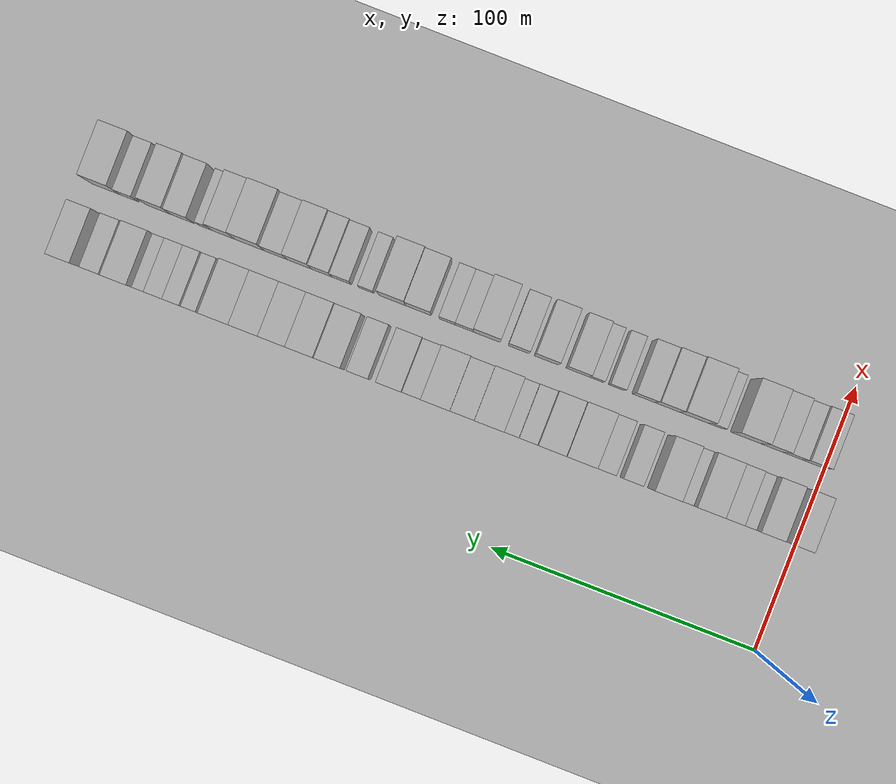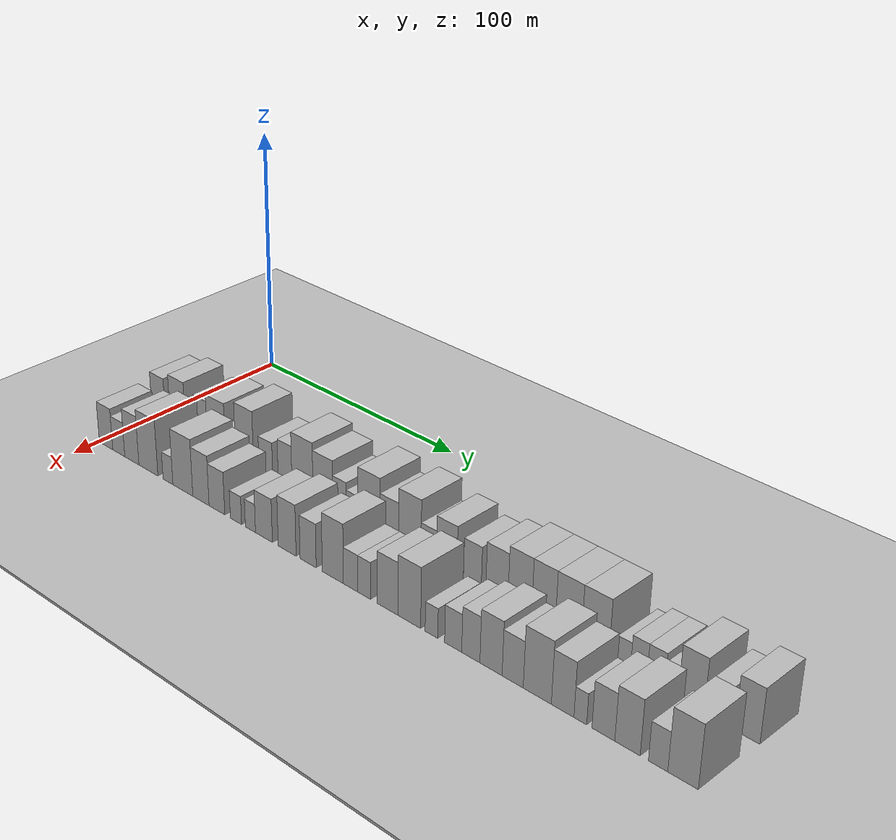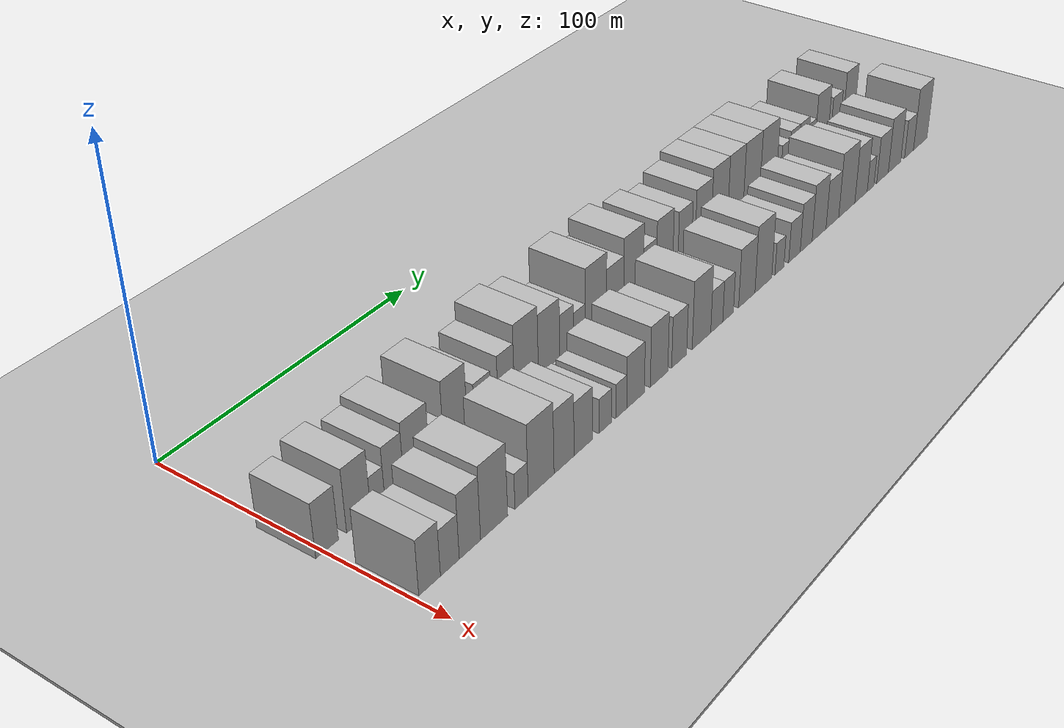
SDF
<sdf version="1.6">
 <world name="default">
  <include><name>ground_plane_1</name><uri>model://HANNAS_ground_plane</uri></include>
  <include>
   <name>ground_plane_2</name>
   <uri>model://HANNAS_ground_plane</uri>
   <pose>100 0 0  0 0 0</pose>
  </include>
  <model name="building_30">
   <static>1</static>
   <pose>50.0000 0.7794 0 0.000000 0.000000 0.000000</pose>
   <link name="link">
    <pose>0 0 9.00 0 0 0</pose>
    <collision name="collision"><geometry><box><size>20.0000 8.2147 18.0000</size></box></geometry></collision>
    <visual name="visual">
     <cast_shadows>0</cast_shadows>
     <geometry><box><size>20.0000 8.2147 18.0000</size></box></geometry>
     <material>
      <script>
       <uri>model://HANNAS_wall/materials/scripts</uri>
       <uri>model://HANNAS_wall/materials/textures</uri>
       <name>vrc/HANNAS_wall</name>
      </script>
     </material>
    </visual>
   </link>
  </model>
  <model name="building_31">
   <static>1</static>
   <pose>50.0000 12.4411 0 0.000000 0.000000 0.000000</pose>
   <link name="link">
    <pose>0 0 10.50 0 0 0</pose>
    <collision name="collision"><geometry><box><size>20.0000 9.1086 21.0000</size></box></geometry></collision>
    <visual name="visual">
     <cast_shadows>0</cast_shadows>
     <geometry><box><size>20.0000 9.1086 21.0000</size></box></geometry>
     <material>
      <script>
       <uri>model://HANNAS_wall/materials/scripts</uri>
       <uri>model://HANNAS_wall/materials/textures</uri>
       <name>vrc/HANNAS_wall</name>
      </script>
     </material>
    </visual>
   </link>
  </model>
  <model name="building_32">
   <static>1</static>
   <pose>50.0000 19.7043 0 0.000000 0.000000 0.000000</pose>
   <link name="link">
    <pose>0 0 6.00 0 0 0</pose>
    <collision name="collision"><geometry><box><size>20.0000 5.4179 12.0000</size></box></geometry></collision>
    <visual name="visual">
     <cast_shadows>0</cast_shadows>
     <geometry><box><size>20.0000 5.4179 12.0000</size></box></geometry>
     <material>
      <script>
       <uri>model://HANNAS_wall/materials/scripts</uri>
       <uri>model://HANNAS_wall/materials/textures</uri>
       <name>vrc/HANNAS_wall</name>
      </script>
     </material>
    </visual>
   </link>
  </model>
  <model name="building_33">
   <static>1</static>
   <pose>50.0000 26.1778 0 0.000000 0.000000 0.000000</pose>
   <link name="link">
    <pose>0 0 9.00 0 0 0</pose>
    <collision name="collision"><geometry><box><size>20.0000 7.5290 18.0000</size></box></geometry></collision>
    <visual name="visual">
     <cast_shadows>0</cast_shadows>
     <geometry><box><size>20.0000 7.5290 18.0000</size></box></geometry>
     <material>
      <script>
       <uri>model://HANNAS_wall/materials/scripts</uri>
       <uri>model://HANNAS_wall/materials/textures</uri>
       <name>vrc/HANNAS_wall</name>
      </script>
     </material>
    </visual>
   </link>
  </model>
  <model name="building_34">
   <static>1</static>
   <pose>50.0000 35.1295 0 0.000000 0.000000 0.000000</pose>
   <link name="link">
    <pose>0 0 10.50 0 0 0</pose>
    <collision name="collision"><geometry><box><size>20.0000 10.3746 21.0000</size></box></geometry></collision>
    <visual name="visual">
     <cast_shadows>0</cast_shadows>
     <geometry><box><size>20.0000 10.3746 21.0000</size></box></geometry>
     <material>
      <script>
       <uri>model://HANNAS_wall/materials/scripts</uri>
       <uri>model://HANNAS_wall/materials/textures</uri>
       <name>vrc/HANNAS_wall</name>
      </script>
     </material>
    </visual>
   </link>
  </model>
  <model name="building_35">
   <static>1</static>
   <pose>50.0000 43.2426 0 0.000000 0.000000 0.000000</pose>
   <link name="link">
    <pose>0 0 6.00 0 0 0</pose>
    <collision name="collision"><geometry><box><size>20.0000 5.8516 12.0000</size></box></geometry></collision>
    <visual name="visual">
     <cast_shadows>0</cast_shadows>
     <geometry><box><size>20.0000 5.8516 12.0000</size></box></geometry>
     <material>
      <script>
       <uri>model://HANNAS_wall/materials/scripts</uri>
       <uri>model://HANNAS_wall/materials/textures</uri>
       <name>vrc/HANNAS_wall</name>
      </script>
     </material>
    </visual>
   </link>
  </model>
  <model name="building_36">
   <static>1</static>
   <pose>50.0000 51.1862 0 0.000000 0.000000 0.000000</pose>
   <link name="link">
    <pose>0 0 12.00 0 0 0</pose>
    <collision name="collision"><geometry><box><size>20.0000 10.0354 24.0000</size></box></geometry></collision>
    <visual name="visual">
     <cast_shadows>0</cast_shadows>
     <geometry><box><size>20.0000 10.0354 24.0000</size></box></geometry>
     <material>
      <script>
       <uri>model://HANNAS_wall/materials/scripts</uri>
       <uri>model://HANNAS_wall/materials/textures</uri>
       <name>vrc/HANNAS_wall</name>
      </script>
     </material>
    </visual>
   </link>
  </model>
  <model name="building_37">
   <static>1</static>
   <pose>50.0000 62.9248 0 0.000000 0.000000 0.000000</pose>
   <link name="link">
    <pose>0 0 7.50 0 0 0</pose>
    <collision name="collision"><geometry><box><size>20.0000 7.4419 15.0000</size></box></geometry></collision>
    <visual name="visual">
     <cast_shadows>0</cast_shadows>
     <geometry><box><size>20.0000 7.4419 15.0000</size></box></geometry>
     <material>
      <script>
       <uri>model://HANNAS_wall/materials/scripts</uri>
       <uri>model://HANNAS_wall/materials/textures</uri>
       <name>vrc/HANNAS_wall</name>
      </script>
     </material>
    </visual>
   </link>
  </model>
  <model name="building_38">
   <static>1</static>
   <pose>50.0000 73.3341 0 0.000000 0.000000 0.000000</pose>
   <link name="link">
    <pose>0 0 9.00 0 0 0</pose>
    <collision name="collision"><geometry><box><size>20.0000 7.3767 18.0000</size></box></geometry></collision>
    <visual name="visual">
     <cast_shadows>0</cast_shadows>
     <geometry><box><size>20.0000 7.3767 18.0000</size></box></geometry>
     <material>
      <script>
       <uri>model://HANNAS_wall/materials/scripts</uri>
       <uri>model://HANNAS_wall/materials/textures</uri>
       <name>vrc/HANNAS_wall</name>
      </script>
     </material>
    </visual>
   </link>
  </model>
  <model name="building_39">
   <static>1</static>
   <pose>50.0000 82.6003 0 0.000000 0.000000 0.000000</pose>
   <link name="link">
    <pose>0 0 12.00 0 0 0</pose>
    <collision name="collision"><geometry><box><size>20.0000 11.1556 24.0000</size></box></geometry></collision>
    <visual name="visual">
     <cast_shadows>0</cast_shadows>
     <geometry><box><size>20.0000 11.1556 24.0000</size></box></geometry>
     <material>
      <script>
       <uri>model://HANNAS_wall/materials/scripts</uri>
       <uri>model://HANNAS_wall/materials/textures</uri>
       <name>vrc/HANNAS_wall</name>
      </script>
     </material>
    </visual>
   </link>
  </model>
  <model name="building_40">
   <static>1</static>
   <pose>50.0000 93.3117 0 0.000000 0.000000 0.000000</pose>
   <link name="link">
    <pose>0 0 10.50 0 0 0</pose>
    <collision name="collision"><geometry><box><size>20.0000 10.2672 21.0000</size></box></geometry></collision>
    <visual name="visual">
     <cast_shadows>0</cast_shadows>
     <geometry><box><size>20.0000 10.2672 21.0000</size></box></geometry>
     <material>
      <script>
       <uri>model://HANNAS_wall/materials/scripts</uri>
       <uri>model://HANNAS_wall/materials/textures</uri>
       <name>vrc/HANNAS_wall</name>
      </script>
     </material>
    </visual>
   </link>
  </model>
  <model name="building_41">
   <static>1</static>
   <pose>50.0000 101.8601 0 0.000000 0.000000 0.000000</pose>
   <link name="link">
    <pose>0 0 7.50 0 0 0</pose>
    <collision name="collision"><geometry><box><size>20.0000 6.8297 15.0000</size></box></geometry></collision>
    <visual name="visual">
     <cast_shadows>0</cast_shadows>
     <geometry><box><size>20.0000 6.8297 15.0000</size></box></geometry>
     <material>
      <script>
       <uri>model://HANNAS_wall/materials/scripts</uri>
       <uri>model://HANNAS_wall/materials/textures</uri>
       <name>vrc/HANNAS_wall</name>
      </script>
     </material>
    </visual>
   </link>
  </model>
  <model name="building_42">
   <static>1</static>
   <pose>50.0000 108.1862 0 0.000000 0.000000 0.000000</pose>
   <link name="link">
    <pose>0 0 6.00 0 0 0</pose>
    <collision name="collision"><geometry><box><size>20.0000 5.8223 12.0000</size></box></geometry></collision>
    <visual name="visual">
     <cast_shadows>0</cast_shadows>
     <geometry><box><size>20.0000 5.8223 12.0000</size></box></geometry>
     <material>
      <script>
       <uri>model://HANNAS_wall/materials/scripts</uri>
       <uri>model://HANNAS_wall/materials/textures</uri>
       <name>vrc/HANNAS_wall</name>
      </script>
     </material>
    </visual>
   </link>
  </model>
  <model name="building_43">
   <static>1</static>
   <pose>50.0000 116.5472 0 0.000000 0.000000 0.000000</pose>
   <link name="link">
    <pose>0 0 12.00 0 0 0</pose>
    <collision name="collision"><geometry><box><size>20.0000 10.8998 24.0000</size></box></geometry></collision>
    <visual name="visual">
     <cast_shadows>0</cast_shadows>
     <geometry><box><size>20.0000 10.8998 24.0000</size></box></geometry>
     <material>
      <script>
       <uri>model://HANNAS_wall/materials/scripts</uri>
       <uri>model://HANNAS_wall/materials/textures</uri>
       <name>vrc/HANNAS_wall</name>
      </script>
     </material>
    </visual>
   </link>
  </model>
  <model name="building_44">
   <static>1</static>
   <pose>50.0000 126.4586 0 0.000000 0.000000 0.000000</pose>
   <link name="link">
    <pose>0 0 9.00 0 0 0</pose>
    <collision name="collision"><geometry><box><size>20.0000 8.9230 18.0000</size></box></geometry></collision>
    <visual name="visual">
     <cast_shadows>0</cast_shadows>
     <geometry><box><size>20.0000 8.9230 18.0000</size></box></geometry>
     <material>
      <script>
       <uri>model://HANNAS_wall/materials/scripts</uri>
       <uri>model://HANNAS_wall/materials/textures</uri>
       <name>vrc/HANNAS_wall</name>
      </script>
     </material>
    </visual>
   </link>
  </model>
  <model name="building_45">
   <static>1</static>
   <pose>50.0000 136.2764 0 0.000000 0.000000 0.000000</pose>
   <link name="link">
    <pose>0 0 12.00 0 0 0</pose>
    <collision name="collision"><geometry><box><size>20.0000 10.7124 24.0000</size></box></geometry></collision>
    <visual name="visual">
     <cast_shadows>0</cast_shadows>
     <geometry><box><size>20.0000 10.7124 24.0000</size></box></geometry>
     <material>
      <script>
       <uri>model://HANNAS_wall/materials/scripts</uri>
       <uri>model://HANNAS_wall/materials/textures</uri>
       <name>vrc/HANNAS_wall</name>
      </script>
     </material>
    </visual>
   </link>
  </model>
  <model name="building_46">
   <static>1</static>
   <pose>50.0000 145.2257 0 0.000000 0.000000 0.000000</pose>
   <link name="link">
    <pose>0 0 7.50 0 0 0</pose>
    <collision name="collision"><geometry><box><size>20.0000 7.1862 15.0000</size></box></geometry></collision>
    <visual name="visual">
     <cast_shadows>0</cast_shadows>
     <geometry><box><size>20.0000 7.1862 15.0000</size></box></geometry>
     <material>
      <script>
       <uri>model://HANNAS_wall/materials/scripts</uri>
       <uri>model://HANNAS_wall/materials/textures</uri>
       <name>vrc/HANNAS_wall</name>
      </script>
     </material>
    </visual>
   </link>
  </model>
  <model name="building_47">
   <static>1</static>
   <pose>50.0000 153.5088 0 0.000000 0.000000 0.000000</pose>
   <link name="link">
    <pose>0 0 10.50 0 0 0</pose>
    <collision name="collision"><geometry><box><size>20.0000 9.3801 21.0000</size></box></geometry></collision>
    <visual name="visual">
     <cast_shadows>0</cast_shadows>
     <geometry><box><size>20.0000 9.3801 21.0000</size></box></geometry>
     <material>
      <script>
       <uri>model://HANNAS_wall/materials/scripts</uri>
       <uri>model://HANNAS_wall/materials/textures</uri>
       <name>vrc/HANNAS_wall</name>
      </script>
     </material>
    </visual>
   </link>
  </model>
  <model name="building_48">
   <static>1</static>
   <pose>50.0000 165.1900 0 0.000000 0.000000 0.000000</pose>
   <link name="link">
    <pose>0 0 9.00 0 0 0</pose>
    <collision name="collision"><geometry><box><size>20.0000 7.9823 18.0000</size></box></geometry></collision>
    <visual name="visual">
     <cast_shadows>0</cast_shadows>
     <geometry><box><size>20.0000 7.9823 18.0000</size></box></geometry>
     <material>
      <script>
       <uri>model://HANNAS_wall/materials/scripts</uri>
       <uri>model://HANNAS_wall/materials/textures</uri>
       <name>vrc/HANNAS_wall</name>
      </script>
     </material>
    </visual>
   </link>
  </model>
  <model name="building_49">
   <static>1</static>
   <pose>50.0000 176.0217 0 0.000000 0.000000 0.000000</pose>
   <link name="link">
    <pose>0 0 10.50 0 0 0</pose>
    <collision name="collision"><geometry><box><size>20.0000 9.6810 21.0000</size></box></geometry></collision>
    <visual name="visual">
     <cast_shadows>0</cast_shadows>
     <geometry><box><size>20.0000 9.6810 21.0000</size></box></geometry>
     <material>
      <script>
       <uri>model://HANNAS_wall/materials/scripts</uri>
       <uri>model://HANNAS_wall/materials/textures</uri>
       <name>vrc/HANNAS_wall</name>
      </script>
     </material>
    </visual>
   </link>
  </model>
  <model name="building_50">
   <static>1</static>
   <pose>50.0000 185.9524 0 0.000000 0.000000 0.000000</pose>
   <link name="link">
    <pose>0 0 12.00 0 0 0</pose>
    <collision name="collision"><geometry><box><size>20.0000 10.1804 24.0000</size></box></geometry></collision>
    <visual name="visual">
     <cast_shadows>0</cast_shadows>
     <geometry><box><size>20.0000 10.1804 24.0000</size></box></geometry>
     <material>
      <script>
       <uri>model://HANNAS_wall/materials/scripts</uri>
       <uri>model://HANNAS_wall/materials/textures</uri>
       <name>vrc/HANNAS_wall</name>
      </script>
     </material>
    </visual>
   </link>
  </model>
  <model name="building_51">
   <static>1</static>
   <pose>50.0000 196.0034 0 0.000000 0.000000 0.000000</pose>
   <link name="link">
    <pose>0 0 12.00 0 0 0</pose>
    <collision name="collision"><geometry><box><size>20.0000 9.9217 24.0000</size></box></geometry></collision>
    <visual name="visual">
     <cast_shadows>0</cast_shadows>
     <geometry><box><size>20.0000 9.9217 24.0000</size></box></geometry>
     <material>
      <script>
       <uri>model://HANNAS_wall/materials/scripts</uri>
       <uri>model://HANNAS_wall/materials/textures</uri>
       <name>vrc/HANNAS_wall</name>
      </script>
     </material>
    </visual>
   </link>
  </model>
  <model name="building_52">
   <static>1</static>
   <pose>50.0000 206.3297 0 0.000000 0.000000 0.000000</pose>
   <link name="link">
    <pose>0 0 12.00 0 0 0</pose>
    <collision name="collision"><geometry><box><size>20.0000 10.7308 24.0000</size></box></geometry></collision>
    <visual name="visual">
     <cast_shadows>0</cast_shadows>
     <geometry><box><size>20.0000 10.7308 24.0000</size></box></geometry>
     <material>
      <script>
       <uri>model://HANNAS_wall/materials/scripts</uri>
       <uri>model://HANNAS_wall/materials/textures</uri>
       <name>vrc/HANNAS_wall</name>
      </script>
     </material>
    </visual>
   </link>
  </model>
  <model name="building_53">
   <static>1</static>
   <pose>50.0000 217.2352 0 0.000000 0.000000 0.000000</pose>
   <link name="link">
    <pose>0 0 12.00 0 0 0</pose>
    <collision name="collision"><geometry><box><size>20.0000 11.0803 24.0000</size></box></geometry></collision>
    <visual name="visual">
     <cast_shadows>0</cast_shadows>
     <geometry><box><size>20.0000 11.0803 24.0000</size></box></geometry>
     <material>
      <script>
       <uri>model://HANNAS_wall/materials/scripts</uri>
       <uri>model://HANNAS_wall/materials/textures</uri>
       <name>vrc/HANNAS_wall</name>
      </script>
     </material>
    </visual>
   </link>
  </model>
  <model name="building_54">
   <static>1</static>
   <pose>50.0000 228.5376 0 0.000000 0.000000 0.000000</pose>
   <link name="link">
    <pose>0 0 6.00 0 0 0</pose>
    <collision name="collision"><geometry><box><size>20.0000 5.5244 12.0000</size></box></geometry></collision>
    <visual name="visual">
     <cast_shadows>0</cast_shadows>
     <geometry><box><size>20.0000 5.5244 12.0000</size></box></geometry>
     <material>
      <script>
       <uri>model://HANNAS_wall/materials/scripts</uri>
       <uri>model://HANNAS_wall/materials/textures</uri>
       <name>vrc/HANNAS_wall</name>
      </script>
     </material>
    </visual>
   </link>
  </model>
  <model name="building_55">
   <static>1</static>
   <pose>50.0000 234.4831 0 0.000000 0.000000 0.000000</pose>
   <link name="link">
    <pose>0 0 7.50 0 0 0</pose>
    <collision name="collision"><geometry><box><size>20.0000 6.3667 15.0000</size></box></geometry></collision>
    <visual name="visual">
     <cast_shadows>0</cast_shadows>
     <geometry><box><size>20.0000 6.3667 15.0000</size></box></geometry>
     <material>
      <script>
       <uri>model://HANNAS_wall/materials/scripts</uri>
       <uri>model://HANNAS_wall/materials/textures</uri>
       <name>vrc/HANNAS_wall</name>
      </script>
     </material>
    </visual>
   </link>
  </model>
  <model name="building_56">
   <static>1</static>
   <pose>50.0000 241.0856 0 0.000000 0.000000 0.000000</pose>
   <link name="link">
    <pose>0 0 7.50 0 0 0</pose>
    <collision name="collision"><geometry><box><size>20.0000 6.8383 15.0000</size></box></geometry></collision>
    <visual name="visual">
     <cast_shadows>0</cast_shadows>
     <geometry><box><size>20.0000 6.8383 15.0000</size></box></geometry>
     <material>
      <script>
       <uri>model://HANNAS_wall/materials/scripts</uri>
       <uri>model://HANNAS_wall/materials/textures</uri>
       <name>vrc/HANNAS_wall</name>
      </script>
     </material>
    </visual>
   </link>
  </model>
  <model name="building_57">
   <static>1</static>
   <pose>50.0000 247.0287 0 0.000000 0.000000 0.000000</pose>
   <link name="link">
    <pose>0 0 6.00 0 0 0</pose>
    <collision name="collision"><geometry><box><size>20.0000 5.0480 12.0000</size></box></geometry></collision>
    <visual name="visual">
     <cast_shadows>0</cast_shadows>
     <geometry><box><size>20.0000 5.0480 12.0000</size></box></geometry>
     <material>
      <script>
       <uri>model://HANNAS_wall/materials/scripts</uri>
       <uri>model://HANNAS_wall/materials/textures</uri>
       <name>vrc/HANNAS_wall</name>
      </script>
     </material>
    </visual>
   </link>
  </model>
  <model name="building_58">
   <static>1</static>
   <pose>50.0000 254.3807 0 0.000000 0.000000 0.000000</pose>
   <link name="link">
    <pose>0 0 10.50 0 0 0</pose>
    <collision name="collision"><geometry><box><size>20.0000 9.6561 21.0000</size></box></geometry></collision>
    <visual name="visual">
     <cast_shadows>0</cast_shadows>
     <geometry><box><size>20.0000 9.6561 21.0000</size></box></geometry>
     <material>
      <script>
       <uri>model://HANNAS_wall/materials/scripts</uri>
       <uri>model://HANNAS_wall/materials/textures</uri>
       <name>vrc/HANNAS_wall</name>
      </script>
     </material>
    </visual>
   </link>
  </model>
  <model name="building_59">
   <static>1</static>
   <pose>50.0000 264.7727 0 0.000000 0.000000 0.000000</pose>
   <link name="link">
    <pose>0 0 7.50 0 0 0</pose>
    <collision name="collision"><geometry><box><size>20.0000 7.1280 15.0000</size></box></geometry></collision>
    <visual name="visual">
     <cast_shadows>0</cast_shadows>
     <geometry><box><size>20.0000 7.1280 15.0000</size></box></geometry>
     <material>
      <script>
       <uri>model://HANNAS_wall/materials/scripts</uri>
       <uri>model://HANNAS_wall/materials/textures</uri>
       <name>vrc/HANNAS_wall</name>
      </script>
     </material>
    </visual>
   </link>
  </model>
  <model name="building_60">
   <static>1</static>
   <pose>50.0000 274.7963 0 0.000000 0.000000 0.000000</pose>
   <link name="link">
    <pose>0 0 10.50 0 0 0</pose>
    <collision name="collision"><geometry><box><size>20.0000 8.9191 21.0000</size></box></geometry></collision>
    <visual name="visual">
     <cast_shadows>0</cast_shadows>
     <geometry><box><size>20.0000 8.9191 21.0000</size></box></geometry>
     <material>
      <script>
       <uri>model://HANNAS_wall/materials/scripts</uri>
       <uri>model://HANNAS_wall/materials/textures</uri>
       <name>vrc/HANNAS_wall</name>
      </script>
     </material>
    </visual>
   </link>
  </model>
  <model name="building_94">
   <static>1</static>
   <pose>79.0000 5.1982 0 0.000000 0.000000 0.000000</pose>
   <link name="link">
    <pose>0 0 9.00 0 0 0</pose>
    <collision name="collision"><geometry><box><size>20.0000 8.1527 18.0000</size></box></geometry></collision>
    <visual name="visual">
     <cast_shadows>0</cast_shadows>
     <geometry><box><size>20.0000 8.1527 18.0000</size></box></geometry>
     <material>
      <script>
       <uri>model://HANNAS_wall/materials/scripts</uri>
       <uri>model://HANNAS_wall/materials/textures</uri>
       <name>vrc/HANNAS_wall</name>
      </script>
     </material>
    </visual>
   </link>
  </model>
  <model name="building_95">
   <static>1</static>
   <pose>79.0000 12.9003 0 0.000000 0.000000 0.000000</pose>
   <link name="link">
    <pose>0 0 7.50 0 0 0</pose>
    <collision name="collision"><geometry><box><size>20.0000 7.2515 15.0000</size></box></geometry></collision>
    <visual name="visual">
     <cast_shadows>0</cast_shadows>
     <geometry><box><size>20.0000 7.2515 15.0000</size></box></geometry>
     <material>
      <script>
       <uri>model://HANNAS_wall/materials/scripts</uri>
       <uri>model://HANNAS_wall/materials/textures</uri>
       <name>vrc/HANNAS_wall</name>
      </script>
     </material>
    </visual>
   </link>
  </model>
  <model name="building_96">
   <static>1</static>
   <pose>79.0000 20.7283 0 0.000000 0.000000 0.000000</pose>
   <link name="link">
    <pose>0 0 10.50 0 0 0</pose>
    <collision name="collision"><geometry><box><size>20.0000 8.4045 21.0000</size></box></geometry></collision>
    <visual name="visual">
     <cast_shadows>0</cast_shadows>
     <geometry><box><size>20.0000 8.4045 21.0000</size></box></geometry>
     <material>
      <script>
       <uri>model://HANNAS_wall/materials/scripts</uri>
       <uri>model://HANNAS_wall/materials/textures</uri>
       <name>vrc/HANNAS_wall</name>
      </script>
     </material>
    </visual>
   </link>
  </model>
  <model name="building_97">
   <static>1</static>
   <pose>79.0000 30.4640 0 0.000000 0.000000 0.000000</pose>
   <link name="link">
    <pose>0 0 12.00 0 0 0</pose>
    <collision name="collision"><geometry><box><size>20.0000 11.0669 24.0000</size></box></geometry></collision>
    <visual name="visual">
     <cast_shadows>0</cast_shadows>
     <geometry><box><size>20.0000 11.0669 24.0000</size></box></geometry>
     <material>
      <script>
       <uri>model://HANNAS_wall/materials/scripts</uri>
       <uri>model://HANNAS_wall/materials/textures</uri>
       <name>vrc/HANNAS_wall</name>
      </script>
     </material>
    </visual>
   </link>
  </model>
  <model name="building_98">
   <static>1</static>
   <pose>79.0000 41.8015 0 0.000000 0.000000 0.000000</pose>
   <link name="link">
    <pose>0 0 6.00 0 0 0</pose>
    <collision name="collision"><geometry><box><size>20.0000 5.6080 12.0000</size></box></geometry></collision>
    <visual name="visual">
     <cast_shadows>0</cast_shadows>
     <geometry><box><size>20.0000 5.6080 12.0000</size></box></geometry>
     <material>
      <script>
       <uri>model://HANNAS_wall/materials/scripts</uri>
       <uri>model://HANNAS_wall/materials/textures</uri>
       <name>vrc/HANNAS_wall</name>
      </script>
     </material>
    </visual>
   </link>
  </model>
  <model name="building_99">
   <static>1</static>
   <pose>79.0000 50.2216 0 0.000000 0.000000 0.000000</pose>
   <link name="link">
    <pose>0 0 12.00 0 0 0</pose>
    <collision name="collision"><geometry><box><size>20.0000 11.2322 24.0000</size></box></geometry></collision>
    <visual name="visual">
     <cast_shadows>0</cast_shadows>
     <geometry><box><size>20.0000 11.2322 24.0000</size></box></geometry>
     <material>
      <script>
       <uri>model://HANNAS_wall/materials/scripts</uri>
       <uri>model://HANNAS_wall/materials/textures</uri>
       <name>vrc/HANNAS_wall</name>
      </script>
     </material>
    </visual>
   </link>
  </model>
  <model name="building_100">
   <static>1</static>
   <pose>79.0000 60.3325 0 0.000000 0.000000 0.000000</pose>
   <link name="link">
    <pose>0 0 10.50 0 0 0</pose>
    <collision name="collision"><geometry><box><size>20.0000 8.9897 21.0000</size></box></geometry></collision>
    <visual name="visual">
     <cast_shadows>0</cast_shadows>
     <geometry><box><size>20.0000 8.9897 21.0000</size></box></geometry>
     <material>
      <script>
       <uri>model://HANNAS_wall/materials/scripts</uri>
       <uri>model://HANNAS_wall/materials/textures</uri>
       <name>vrc/HANNAS_wall</name>
      </script>
     </material>
    </visual>
   </link>
  </model>
  <model name="building_101">
   <static>1</static>
   <pose>79.0000 69.0966 0 0.000000 0.000000 0.000000</pose>
   <link name="link">
    <pose>0 0 9.00 0 0 0</pose>
    <collision name="collision"><geometry><box><size>20.0000 8.5384 18.0000</size></box></geometry></collision>
    <visual name="visual">
     <cast_shadows>0</cast_shadows>
     <geometry><box><size>20.0000 8.5384 18.0000</size></box></geometry>
     <material>
      <script>
       <uri>model://HANNAS_wall/materials/scripts</uri>
       <uri>model://HANNAS_wall/materials/textures</uri>
       <name>vrc/HANNAS_wall</name>
      </script>
     </material>
    </visual>
   </link>
  </model>
  <model name="building_102">
   <static>1</static>
   <pose>79.0000 79.3547 0 0.000000 0.000000 0.000000</pose>
   <link name="link">
    <pose>0 0 6.00 0 0 0</pose>
    <collision name="collision"><geometry><box><size>20.0000 5.9780 12.0000</size></box></geometry></collision>
    <visual name="visual">
     <cast_shadows>0</cast_shadows>
     <geometry><box><size>20.0000 5.9780 12.0000</size></box></geometry>
     <material>
      <script>
       <uri>model://HANNAS_wall/materials/scripts</uri>
       <uri>model://HANNAS_wall/materials/textures</uri>
       <name>vrc/HANNAS_wall</name>
      </script>
     </material>
    </visual>
   </link>
  </model>
  <model name="building_103">
   <static>1</static>
   <pose>79.0000 86.9988 0 0.000000 0.000000 0.000000</pose>
   <link name="link">
    <pose>0 0 6.00 0 0 0</pose>
    <collision name="collision"><geometry><box><size>20.0000 5.3101 12.0000</size></box></geometry></collision>
    <visual name="visual">
     <cast_shadows>0</cast_shadows>
     <geometry><box><size>20.0000 5.3101 12.0000</size></box></geometry>
     <material>
      <script>
       <uri>model://HANNAS_wall/materials/scripts</uri>
       <uri>model://HANNAS_wall/materials/textures</uri>
       <name>vrc/HANNAS_wall</name>
      </script>
     </material>
    </visual>
   </link>
  </model>
  <model name="building_104">
   <static>1</static>
   <pose>79.0000 94.0292 0 0.000000 0.000000 0.000000</pose>
   <link name="link">
    <pose>0 0 9.00 0 0 0</pose>
    <collision name="collision"><geometry><box><size>20.0000 8.7508 18.0000</size></box></geometry></collision>
    <visual name="visual">
     <cast_shadows>0</cast_shadows>
     <geometry><box><size>20.0000 8.7508 18.0000</size></box></geometry>
     <material>
      <script>
       <uri>model://HANNAS_wall/materials/scripts</uri>
       <uri>model://HANNAS_wall/materials/textures</uri>
       <name>vrc/HANNAS_wall</name>
      </script>
     </material>
    </visual>
   </link>
  </model>
  <model name="building_105">
   <static>1</static>
   <pose>79.0000 105.9175 0 0.000000 0.000000 0.000000</pose>
   <link name="link">
    <pose>0 0 10.50 0 0 0</pose>
    <collision name="collision"><geometry><box><size>20.0000 9.0259 21.0000</size></box></geometry></collision>
    <visual name="visual">
     <cast_shadows>0</cast_shadows>
     <geometry><box><size>20.0000 9.0259 21.0000</size></box></geometry>
     <material>
      <script>
       <uri>model://HANNAS_wall/materials/scripts</uri>
       <uri>model://HANNAS_wall/materials/textures</uri>
       <name>vrc/HANNAS_wall</name>
      </script>
     </material>
    </visual>
   </link>
  </model>
  <model name="building_106">
   <static>1</static>
   <pose>79.0000 116.4043 0 0.000000 0.000000 0.000000</pose>
   <link name="link">
    <pose>0 0 9.00 0 0 0</pose>
    <collision name="collision"><geometry><box><size>20.0000 7.9477 18.0000</size></box></geometry></collision>
    <visual name="visual">
     <cast_shadows>0</cast_shadows>
     <geometry><box><size>20.0000 7.9477 18.0000</size></box></geometry>
     <material>
      <script>
       <uri>model://HANNAS_wall/materials/scripts</uri>
       <uri>model://HANNAS_wall/materials/textures</uri>
       <name>vrc/HANNAS_wall</name>
      </script>
     </material>
    </visual>
   </link>
  </model>
  <model name="building_107">
   <static>1</static>
   <pose>79.0000 128.4597 0 0.000000 0.000000 0.000000</pose>
   <link name="link">
    <pose>0 0 12.00 0 0 0</pose>
    <collision name="collision"><geometry><box><size>20.0000 10.1632 24.0000</size></box></geometry></collision>
    <visual name="visual">
     <cast_shadows>0</cast_shadows>
     <geometry><box><size>20.0000 10.1632 24.0000</size></box></geometry>
     <material>
      <script>
       <uri>model://HANNAS_wall/materials/scripts</uri>
       <uri>model://HANNAS_wall/materials/textures</uri>
       <name>vrc/HANNAS_wall</name>
      </script>
     </material>
    </visual>
   </link>
  </model>
  <model name="building_108">
   <static>1</static>
   <pose>79.0000 136.9167 0 0.000000 0.000000 0.000000</pose>
   <link name="link">
    <pose>0 0 7.50 0 0 0</pose>
    <collision name="collision"><geometry><box><size>20.0000 6.7508 15.0000</size></box></geometry></collision>
    <visual name="visual">
     <cast_shadows>0</cast_shadows>
     <geometry><box><size>20.0000 6.7508 15.0000</size></box></geometry>
     <material>
      <script>
       <uri>model://HANNAS_wall/materials/scripts</uri>
       <uri>model://HANNAS_wall/materials/textures</uri>
       <name>vrc/HANNAS_wall</name>
      </script>
     </material>
    </visual>
   </link>
  </model>
  <model name="building_109">
   <static>1</static>
   <pose>79.0000 143.3404 0 0.000000 0.000000 0.000000</pose>
   <link name="link">
    <pose>0 0 7.50 0 0 0</pose>
    <collision name="collision"><geometry><box><size>20.0000 6.0966 15.0000</size></box></geometry></collision>
    <visual name="visual">
     <cast_shadows>0</cast_shadows>
     <geometry><box><size>20.0000 6.0966 15.0000</size></box></geometry>
     <material>
      <script>
       <uri>model://HANNAS_wall/materials/scripts</uri>
       <uri>model://HANNAS_wall/materials/textures</uri>
       <name>vrc/HANNAS_wall</name>
      </script>
     </material>
    </visual>
   </link>
  </model>
  <model name="building_110">
   <static>1</static>
   <pose>79.0000 154.1963 0 0.000000 0.000000 0.000000</pose>
   <link name="link">
    <pose>0 0 10.50 0 0 0</pose>
    <collision name="collision"><geometry><box><size>20.0000 9.6154 21.0000</size></box></geometry></collision>
    <visual name="visual">
     <cast_shadows>0</cast_shadows>
     <geometry><box><size>20.0000 9.6154 21.0000</size></box></geometry>
     <material>
      <script>
       <uri>model://HANNAS_wall/materials/scripts</uri>
       <uri>model://HANNAS_wall/materials/textures</uri>
       <name>vrc/HANNAS_wall</name>
      </script>
     </material>
    </visual>
   </link>
  </model>
  <model name="building_111">
   <static>1</static>
   <pose>79.0000 164.0771 0 0.000000 0.000000 0.000000</pose>
   <link name="link">
    <pose>0 0 12.00 0 0 0</pose>
    <collision name="collision"><geometry><box><size>20.0000 10.1461 24.0000</size></box></geometry></collision>
    <visual name="visual">
     <cast_shadows>0</cast_shadows>
     <geometry><box><size>20.0000 10.1461 24.0000</size></box></geometry>
     <material>
      <script>
       <uri>model://HANNAS_wall/materials/scripts</uri>
       <uri>model://HANNAS_wall/materials/textures</uri>
       <name>vrc/HANNAS_wall</name>
      </script>
     </material>
    </visual>
   </link>
  </model>
  <model name="building_112">
   <static>1</static>
   <pose>79.0000 173.9266 0 0.000000 0.000000 0.000000</pose>
   <link name="link">
    <pose>0 0 6.00 0 0 0</pose>
    <collision name="collision"><geometry><box><size>20.0000 5.5530 12.0000</size></box></geometry></collision>
    <visual name="visual">
     <cast_shadows>0</cast_shadows>
     <geometry><box><size>20.0000 5.5530 12.0000</size></box></geometry>
     <material>
      <script>
       <uri>model://HANNAS_wall/materials/scripts</uri>
       <uri>model://HANNAS_wall/materials/textures</uri>
       <name>vrc/HANNAS_wall</name>
      </script>
     </material>
    </visual>
   </link>
  </model>
  <model name="building_113">
   <static>1</static>
   <pose>79.0000 183.3764 0 0.000000 0.000000 0.000000</pose>
   <link name="link">
    <pose>0 0 7.50 0 0 0</pose>
    <collision name="collision"><geometry><box><size>20.0000 7.3467 15.0000</size></box></geometry></collision>
    <visual name="visual">
     <cast_shadows>0</cast_shadows>
     <geometry><box><size>20.0000 7.3467 15.0000</size></box></geometry>
     <material>
      <script>
       <uri>model://HANNAS_wall/materials/scripts</uri>
       <uri>model://HANNAS_wall/materials/textures</uri>
       <name>vrc/HANNAS_wall</name>
      </script>
     </material>
    </visual>
   </link>
  </model>
  <model name="building_114">
   <static>1</static>
   <pose>79.0000 190.9072 0 0.000000 0.000000 0.000000</pose>
   <link name="link">
    <pose>0 0 9.00 0 0 0</pose>
    <collision name="collision"><geometry><box><size>20.0000 7.7148 18.0000</size></box></geometry></collision>
    <visual name="visual">
     <cast_shadows>0</cast_shadows>
     <geometry><box><size>20.0000 7.7148 18.0000</size></box></geometry>
     <material>
      <script>
       <uri>model://HANNAS_wall/materials/scripts</uri>
       <uri>model://HANNAS_wall/materials/textures</uri>
       <name>vrc/HANNAS_wall</name>
      </script>
     </material>
    </visual>
   </link>
  </model>
  <model name="building_115">
   <static>1</static>
   <pose>79.0000 199.3885 0 0.000000 0.000000 0.000000</pose>
   <link name="link">
    <pose>0 0 10.50 0 0 0</pose>
    <collision name="collision"><geometry><box><size>20.0000 9.2477 21.0000</size></box></geometry></collision>
    <visual name="visual">
     <cast_shadows>0</cast_shadows>
     <geometry><box><size>20.0000 9.2477 21.0000</size></box></geometry>
     <material>
      <script>
       <uri>model://HANNAS_wall/materials/scripts</uri>
       <uri>model://HANNAS_wall/materials/textures</uri>
       <name>vrc/HANNAS_wall</name>
      </script>
     </material>
    </visual>
   </link>
  </model>
  <model name="building_116">
   <static>1</static>
   <pose>79.0000 208.3220 0 0.000000 0.000000 0.000000</pose>
   <link name="link">
    <pose>0 0 9.00 0 0 0</pose>
    <collision name="collision"><geometry><box><size>20.0000 8.6192 18.0000</size></box></geometry></collision>
    <visual name="visual">
     <cast_shadows>0</cast_shadows>
     <geometry><box><size>20.0000 8.6192 18.0000</size></box></geometry>
     <material>
      <script>
       <uri>model://HANNAS_wall/materials/scripts</uri>
       <uri>model://HANNAS_wall/materials/textures</uri>
       <name>vrc/HANNAS_wall</name>
      </script>
     </material>
    </visual>
   </link>
  </model>
  <model name="building_117">
   <static>1</static>
   <pose>79.0000 218.2445 0 0.000000 0.000000 0.000000</pose>
   <link name="link">
    <pose>0 0 12.00 0 0 0</pose>
    <collision name="collision"><geometry><box><size>20.0000 11.2258 24.0000</size></box></geometry></collision>
    <visual name="visual">
     <cast_shadows>0</cast_shadows>
     <geometry><box><size>20.0000 11.2258 24.0000</size></box></geometry>
     <material>
      <script>
       <uri>model://HANNAS_wall/materials/scripts</uri>
       <uri>model://HANNAS_wall/materials/textures</uri>
       <name>vrc/HANNAS_wall</name>
      </script>
     </material>
    </visual>
   </link>
  </model>
  <model name="building_118">
   <static>1</static>
   <pose>79.0000 228.2651 0 0.000000 0.000000 0.000000</pose>
   <link name="link">
    <pose>0 0 10.50 0 0 0</pose>
    <collision name="collision"><geometry><box><size>20.0000 8.8156 21.0000</size></box></geometry></collision>
    <visual name="visual">
     <cast_shadows>0</cast_shadows>
     <geometry><box><size>20.0000 8.8156 21.0000</size></box></geometry>
     <material>
      <script>
       <uri>model://HANNAS_wall/materials/scripts</uri>
       <uri>model://HANNAS_wall/materials/textures</uri>
       <name>vrc/HANNAS_wall</name>
      </script>
     </material>
    </visual>
   </link>
  </model>
  <model name="building_119">
   <static>1</static>
   <pose>79.0000 235.1212 0 0.000000 0.000000 0.000000</pose>
   <link name="link">
    <pose>0 0 6.00 0 0 0</pose>
    <collision name="collision"><geometry><box><size>20.0000 4.8965 12.0000</size></box></geometry></collision>
    <visual name="visual">
     <cast_shadows>0</cast_shadows>
     <geometry><box><size>20.0000 4.8965 12.0000</size></box></geometry>
     <material>
      <script>
       <uri>model://HANNAS_wall/materials/scripts</uri>
       <uri>model://HANNAS_wall/materials/textures</uri>
       <name>vrc/HANNAS_wall</name>
      </script>
     </material>
    </visual>
   </link>
  </model>
  <model name="building_120">
   <static>1</static>
   <pose>79.0000 243.8682 0 0.000000 0.000000 0.000000</pose>
   <link name="link">
    <pose>0 0 9.00 0 0 0</pose>
    <collision name="collision"><geometry><box><size>20.0000 8.5975 18.0000</size></box></geometry></collision>
    <visual name="visual">
     <cast_shadows>0</cast_shadows>
     <geometry><box><size>20.0000 8.5975 18.0000</size></box></geometry>
     <material>
      <script>
       <uri>model://HANNAS_wall/materials/scripts</uri>
       <uri>model://HANNAS_wall/materials/textures</uri>
       <name>vrc/HANNAS_wall</name>
      </script>
     </material>
    </visual>
   </link>
  </model>
  <model name="building_121">
   <static>1</static>
   <pose>79.0000 252.8496 0 0.000000 0.000000 0.000000</pose>
   <link name="link">
    <pose>0 0 10.50 0 0 0</pose>
    <collision name="collision"><geometry><box><size>20.0000 9.3652 21.0000</size></box></geometry></collision>
    <visual name="visual">
     <cast_shadows>0</cast_shadows>
     <geometry><box><size>20.0000 9.3652 21.0000</size></box></geometry>
     <material>
      <script>
       <uri>model://HANNAS_wall/materials/scripts</uri>
       <uri>model://HANNAS_wall/materials/textures</uri>
       <name>vrc/HANNAS_wall</name>
      </script>
     </material>
    </visual>
   </link>
  </model>
  <model name="building_122">
   <static>1</static>
   <pose>79.0000 264.0044 0 0.000000 0.000000 0.000000</pose>
   <link name="link">
    <pose>0 0 7.50 0 0 0</pose>
    <collision name="collision"><geometry><box><size>20.0000 6.9443 15.0000</size></box></geometry></collision>
    <visual name="visual">
     <cast_shadows>0</cast_shadows>
     <geometry><box><size>20.0000 6.9443 15.0000</size></box></geometry>
     <material>
      <script>
       <uri>model://HANNAS_wall/materials/scripts</uri>
       <uri>model://HANNAS_wall/materials/textures</uri>
       <name>vrc/HANNAS_wall</name>
      </script>
     </material>
    </visual>
   </link>
  </model>
  <model name="building_123">
   <static>1</static>
   <pose>79.0000 272.8571 0 0.000000 0.000000 0.000000</pose>
   <link name="link">
    <pose>0 0 12.00 0 0 0</pose>
    <collision name="collision"><geometry><box><size>20.0000 10.7613 24.0000</size></box></geometry></collision>
    <visual name="visual">
     <cast_shadows>0</cast_shadows>
     <geometry><box><size>20.0000 10.7613 24.0000</size></box></geometry>
     <material>
      <script>
       <uri>model://HANNAS_wall/materials/scripts</uri>
       <uri>model://HANNAS_wall/materials/textures</uri>
       <name>vrc/HANNAS_wall</name>
      </script>
     </material>
    </visual>
   </link>
  </model>
 </world>
</sdf>
